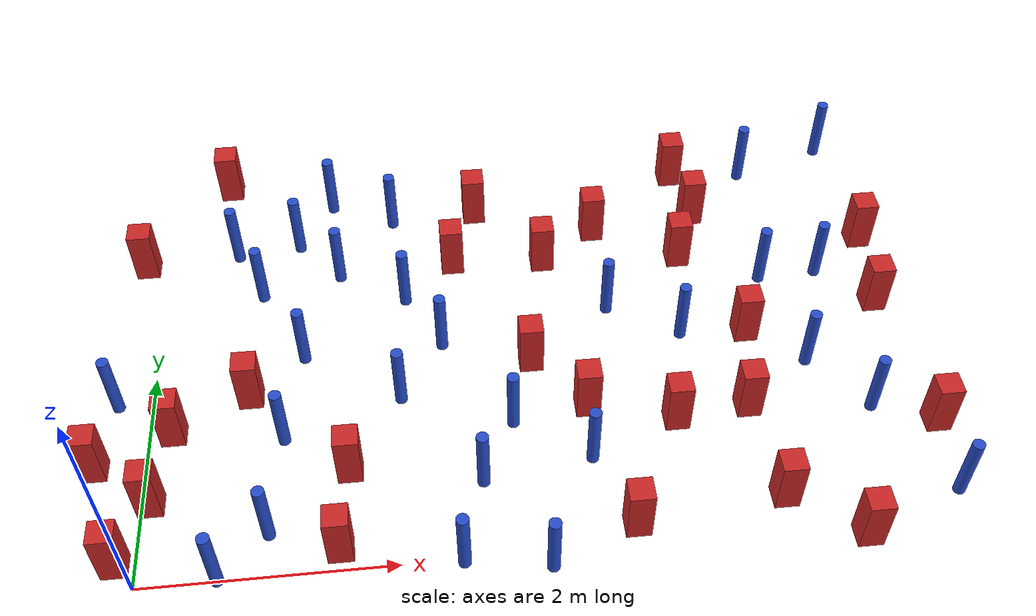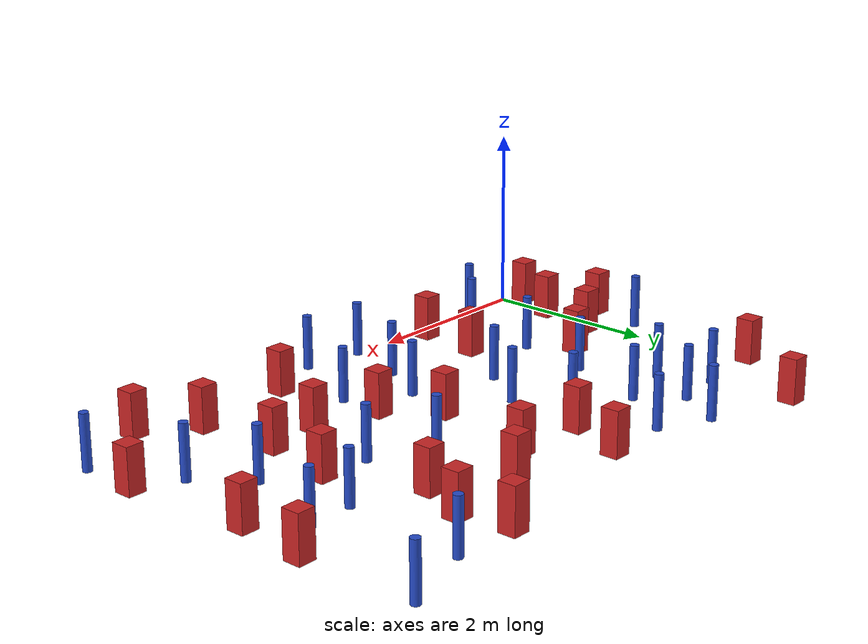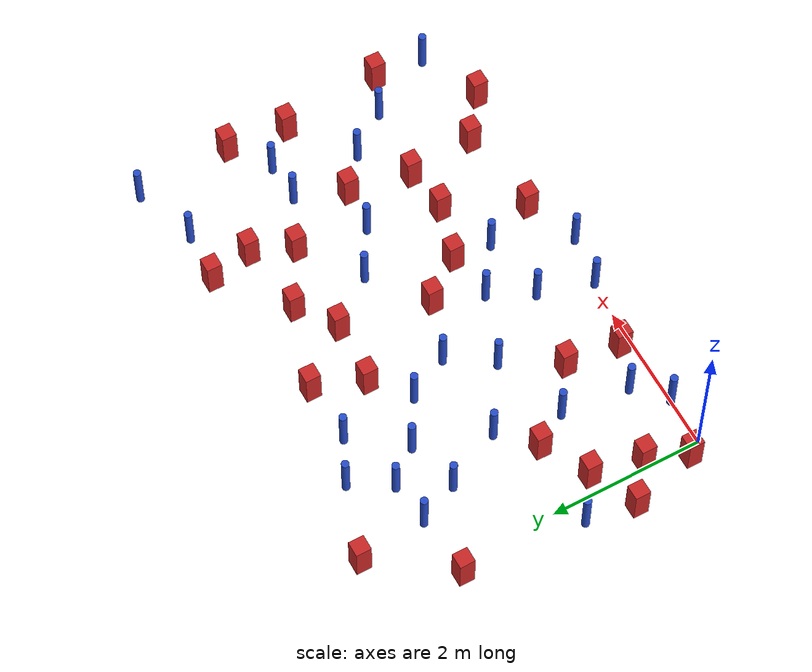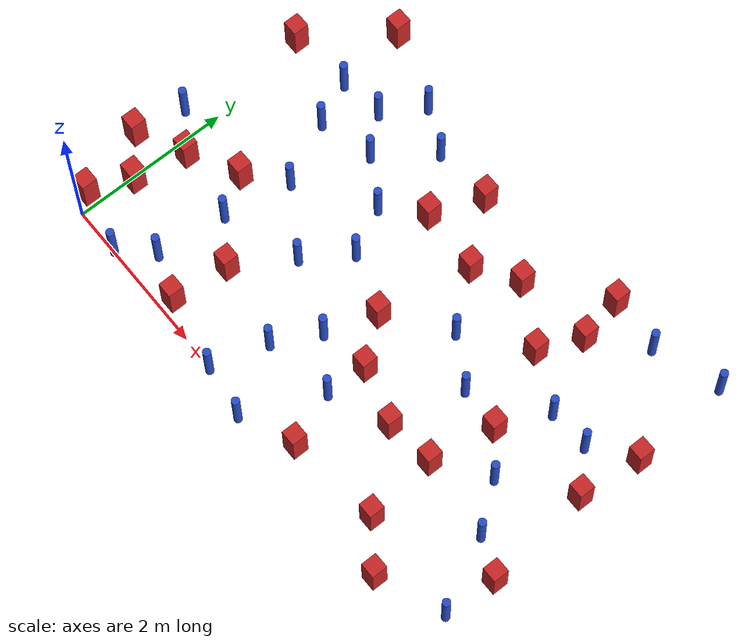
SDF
<sdf version="1.6">
 <model name="dense_0">
  <model name="pole_obstacle0">
   <static>true</static>
   <pose>2.05534213847 1.58425877043 7.38925637345e-09 -8.471706928e-08 1.24976765152e-08 -1.74513093012e-07</pose>
   <link name="link">
    <pose>0 0 0.3 0 -0 0</pose>
    <inertial>
     <mass>1</mass>
     <inertia><ixx>0.145833</ixx><ixy>0</ixy><ixz>0</ixz><iyy>0.145833</iyy><iyz>0</iyz><izz>0.125</izz></inertia>
    </inertial>
    <collision name="collision">
     <geometry><cylinder><radius>0.05</radius><length>.6</length></cylinder></geometry>
    </collision>
    <visual name="visual">
     <geometry><cylinder><radius>0.05</radius><length>.6</length></cylinder></geometry>
     <material>
      <script><name>Gazebo/Blue</name><uri>file://media/materials/scripts/gazebo.material</uri></script>
     </material>
    </visual>
   </link>
  </model>
  <model name="pole_obstacle3">
   <static>true</static>
   <pose>1.2492648832 2.10685251621 7.38925637345e-09 -8.47170692799e-08 1.24976765053e-08 -1.74513093017e-07</pose>
   <link name="link">
    <pose>0 0 0.3 0 -0 0</pose>
    <inertial>
     <mass>1</mass>
     <inertia><ixx>0.145833</ixx><ixy>0</ixy><ixz>0</ixz><iyy>0.145833</iyy><iyz>0</iyz><izz>0.125</izz></inertia>
    </inertial>
    <collision name="collision">
     <geometry><cylinder><radius>0.05</radius><length>.6</length></cylinder></geometry>
    </collision>
    <visual name="visual">
     <geometry><cylinder><radius>0.05</radius><length>.6</length></cylinder></geometry>
     <material>
      <script><name>Gazebo/Blue</name><uri>file://media/materials/scripts/gazebo.material</uri></script>
     </material>
    </visual>
   </link>
  </model>
  <model name="square_post_obstacle10">
   <static>true</static>
   <pose>6.42466675228 0.901377303321 1.91545236811e-07 -7.35059704564e-06 1.12565212e-07 2.39332434364e-05</pose>
   <link name="link">
    <pose>0 0 0.25 0 -0 0</pose>
    <inertial>
     <mass>100</mass>
     <inertia>
      <ixx>0.166667</ixx>
      <ixy>0</ixy>
      <ixz>0</ixz>
      <iyy>0.166667</iyy>
      <iyz>0</iyz>
      <izz>0.166667</izz>
     </inertia>
    </inertial>
    <collision name="collision"><geometry><box><size>.2 .2 .5</size></box></geometry></collision>
    <visual name="visual">
     <geometry><box><size>.2 .2 .5</size></box></geometry>
     <material>
      <script><name>Gazebo/Red</name><uri>file://media/materials/scripts/gazebo.material</uri></script>
     </material>
    </visual>
   </link>
  </model>
  <model name="square_post_obstacle14">
   <static>true</static>
   <pose>4.64269038231 2.97652837888 1.91545236811e-07 -7.35059704564e-06 1.12565212e-07 2.39332434364e-05</pose>
   <link name="link">
    <pose>0 0 0.25 0 -0 0</pose>
    <inertial>
     <mass>100</mass>
     <inertia>
      <ixx>0.166667</ixx>
      <ixy>0</ixy>
      <ixz>0</ixz>
      <iyy>0.166667</iyy>
      <iyz>0</iyz>
      <izz>0.166667</izz>
     </inertia>
    </inertial>
    <collision name="collision"><geometry><box><size>.2 .2 .5</size></box></geometry></collision>
    <visual name="visual">
     <geometry><box><size>.2 .2 .5</size></box></geometry>
     <material>
      <script><name>Gazebo/Red</name><uri>file://media/materials/scripts/gazebo.material</uri></script>
     </material>
    </visual>
   </link>
  </model>
  <model name="pole_obstacle9">
   <static>true</static>
   <pose>1.56069903557 3.04466221461 7.38925637345e-09 -8.47170692799e-08 1.24976765053e-08 -1.74513093017e-07</pose>
   <link name="link">
    <pose>0 0 0.3 0 -0 0</pose>
    <inertial>
     <mass>1</mass>
     <inertia><ixx>0.145833</ixx><ixy>0</ixy><ixz>0</ixz><iyy>0.145833</iyy><iyz>0</iyz><izz>0.125</izz></inertia>
    </inertial>
    <collision name="collision">
     <geometry><cylinder><radius>0.05</radius><length>.6</length></cylinder></geometry>
    </collision>
    <visual name="visual">
     <geometry><cylinder><radius>0.05</radius><length>.6</length></cylinder></geometry>
     <material>
      <script><name>Gazebo/Blue</name><uri>file://media/materials/scripts/gazebo.material</uri></script>
     </material>
    </visual>
   </link>
  </model>
  <model name="square_post_obstacle21">
   <static>true</static>
   <pose>5.06499825312 2.02042992541 1.91545236811e-07 -7.35059704564e-06 1.12565212e-07 2.39332434364e-05</pose>
   <link name="link">
    <pose>0 0 0.25 0 -0 0</pose>
    <inertial>
     <mass>100</mass>
     <inertia>
      <ixx>0.166667</ixx>
      <ixy>0</ixy>
      <ixz>0</ixz>
      <iyy>0.166667</iyy>
      <iyz>0</iyz>
      <izz>0.166667</izz>
     </inertia>
    </inertial>
    <collision name="collision"><geometry><box><size>.2 .2 .5</size></box></geometry></collision>
    <visual name="visual">
     <geometry><box><size>.2 .2 .5</size></box></geometry>
     <material>
      <script><name>Gazebo/Red</name><uri>file://media/materials/scripts/gazebo.material</uri></script>
     </material>
    </visual>
   </link>
  </model>
  <model name="square_post_obstacle29">
   <static>true</static>
   <pose>3.81314201577 0.163402459271 1.91545236811e-07 -7.35059704564e-06 1.12565212e-07 2.39332434364e-05</pose>
   <link name="link">
    <pose>0 0 0.25 0 -0 0</pose>
    <inertial>
     <mass>100</mass>
     <inertia>
      <ixx>0.166667</ixx>
      <ixy>0</ixy>
      <ixz>0</ixz>
      <iyy>0.166667</iyy>
      <iyz>0</iyz>
      <izz>0.166667</izz>
     </inertia>
    </inertial>
    <collision name="collision"><geometry><box><size>.2 .2 .5</size></box></geometry></collision>
    <visual name="visual">
     <geometry><box><size>.2 .2 .5</size></box></geometry>
     <material>
      <script><name>Gazebo/Red</name><uri>file://media/materials/scripts/gazebo.material</uri></script>
     </material>
    </visual>
   </link>
  </model>
  <model name="pole_obstacle22">
   <static>true</static>
   <pose>0.873941786842 2.86582440378 7.38925637345e-09 -8.47170692799e-08 1.2497676509e-08 -1.74513093016e-07</pose>
   <link name="link">
    <pose>0 0 0.3 0 -0 0</pose>
    <inertial>
     <mass>1</mass>
     <inertia><ixx>0.145833</ixx><ixy>0</ixy><ixz>0</ixz><iyy>0.145833</iyy><iyz>0</iyz><izz>0.125</izz></inertia>
    </inertial>
    <collision name="collision">
     <geometry><cylinder><radius>0.05</radius><length>.6</length></cylinder></geometry>
    </collision>
    <visual name="visual">
     <geometry><cylinder><radius>0.05</radius><length>.6</length></cylinder></geometry>
     <material>
      <script><name>Gazebo/Blue</name><uri>file://media/materials/scripts/gazebo.material</uri></script>
     </material>
    </visual>
   </link>
  </model>
  <model name="pole_obstacle31">
   <static>true</static>
   <pose>0.634519631613 3.39178512038 7.38925637345e-09 -8.47170692799e-08 1.2497676509e-08 -1.74513093016e-07</pose>
   <link name="link">
    <pose>0 0 0.3 0 -0 0</pose>
    <inertial>
     <mass>1</mass>
     <inertia><ixx>0.145833</ixx><ixy>0</ixy><ixz>0</ixz><iyy>0.145833</iyy><iyz>0</iyz><izz>0.125</izz></inertia>
    </inertial>
    <collision name="collision">
     <geometry><cylinder><radius>0.05</radius><length>.6</length></cylinder></geometry>
    </collision>
    <visual name="visual">
     <geometry><cylinder><radius>0.05</radius><length>.6</length></cylinder></geometry>
     <material>
      <script><name>Gazebo/Blue</name><uri>file://media/materials/scripts/gazebo.material</uri></script>
     </material>
    </visual>
   </link>
  </model>
  <model name="pole_obstacle37">
   <static>true</static>
   <pose>5.93893864169 1.10875900663 7.38925637345e-09 -8.471706928e-08 1.24976765134e-08 -1.74513093015e-07</pose>
   <link name="link">
    <pose>0 0 0.3 0 -0 0</pose>
    <inertial>
     <mass>1</mass>
     <inertia><ixx>0.145833</ixx><ixy>0</ixy><ixz>0</ixz><iyy>0.145833</iyy><iyz>0</iyz><izz>0.125</izz></inertia>
    </inertial>
    <collision name="collision">
     <geometry><cylinder><radius>0.05</radius><length>.6</length></cylinder></geometry>
    </collision>
    <visual name="visual">
     <geometry><cylinder><radius>0.05</radius><length>.6</length></cylinder></geometry>
     <material>
      <script><name>Gazebo/Blue</name><uri>file://media/materials/scripts/gazebo.material</uri></script>
     </material>
    </visual>
   </link>
  </model>
  <model name="pole_obstacle38">
   <static>true</static>
   <pose>5.45187543839 4.03479541859 7.38925637345e-09 -8.47170692797e-08 1.24976764805e-08 -1.74513093031e-07</pose>
   <link name="link">
    <pose>0 0 0.3 0 -0 0</pose>
    <inertial>
     <mass>1</mass>
     <inertia><ixx>0.145833</ixx><ixy>0</ixy><ixz>0</ixz><iyy>0.145833</iyy><iyz>0</iyz><izz>0.125</izz></inertia>
    </inertial>
    <collision name="collision">
     <geometry><cylinder><radius>0.05</radius><length>.6</length></cylinder></geometry>
    </collision>
    <visual name="visual">
     <geometry><cylinder><radius>0.05</radius><length>.6</length></cylinder></geometry>
     <material>
      <script><name>Gazebo/Blue</name><uri>file://media/materials/scripts/gazebo.material</uri></script>
     </material>
    </visual>
   </link>
  </model>
  <model name="square_post_obstacle38">
   <static>true</static>
   <pose>0.0765359612775 0.720646878985 1.91545236811e-07 -7.35059704564e-06 1.12565212e-07 2.39332434364e-05</pose>
   <link name="link">
    <pose>0 0 0.25 0 -0 0</pose>
    <inertial>
     <mass>100</mass>
     <inertia>
      <ixx>0.166667</ixx>
      <ixy>0</ixy>
      <ixz>0</ixz>
      <iyy>0.166667</iyy>
      <iyz>0</iyz>
      <izz>0.166667</izz>
     </inertia>
    </inertial>
    <collision name="collision"><geometry><box><size>.2 .2 .5</size></box></geometry></collision>
    <visual name="visual">
     <geometry><box><size>.2 .2 .5</size></box></geometry>
     <material>
      <script><name>Gazebo/Red</name><uri>file://media/materials/scripts/gazebo.material</uri></script>
     </material>
    </visual>
   </link>
  </model>
  <model name="pole_obstacle50">
   <static>true</static>
   <pose>2.4703769479 -0.0257147337834 7.38925637345e-09 -8.471706928e-08 1.24976765123e-08 -1.74513093015e-07</pose>
   <link name="link">
    <pose>0 0 0.3 0 -0 0</pose>
    <inertial>
     <mass>1</mass>
     <inertia><ixx>0.145833</ixx><ixy>0</ixy><ixz>0</ixz><iyy>0.145833</iyy><iyz>0</iyz><izz>0.125</izz></inertia>
    </inertial>
    <collision name="collision">
     <geometry><cylinder><radius>0.05</radius><length>.6</length></cylinder></geometry>
    </collision>
    <visual name="visual">
     <geometry><cylinder><radius>0.05</radius><length>.6</length></cylinder></geometry>
     <material>
      <script><name>Gazebo/Blue</name><uri>file://media/materials/scripts/gazebo.material</uri></script>
     </material>
    </visual>
   </link>
  </model>
  <model name="square_post_obstacle54">
   <static>true</static>
   <pose>3.90357703714 3.39285576708 1.91545236811e-07 -7.35059704564e-06 1.12565212e-07 2.39332434364e-05</pose>
   <link name="link">
    <pose>0 0 0.25 0 -0 0</pose>
    <inertial>
     <mass>100</mass>
     <inertia>
      <ixx>0.166667</ixx>
      <ixy>0</ixy>
      <ixz>0</ixz>
      <iyy>0.166667</iyy>
      <iyz>0</iyz>
      <izz>0.166667</izz>
     </inertia>
    </inertial>
    <collision name="collision"><geometry><box><size>.2 .2 .5</size></box></geometry></collision>
    <visual name="visual">
     <geometry><box><size>.2 .2 .5</size></box></geometry>
     <material>
      <script><name>Gazebo/Red</name><uri>file://media/materials/scripts/gazebo.material</uri></script>
     </material>
    </visual>
   </link>
  </model>
  <model name="square_post_obstacle55">
   <static>true</static>
   <pose>3.17290974705 1.87367099776 1.91545236811e-07 -7.35059704564e-06 1.12565212e-07 2.39332434364e-05</pose>
   <link name="link">
    <pose>0 0 0.25 0 -0 0</pose>
    <inertial>
     <mass>100</mass>
     <inertia>
      <ixx>0.166667</ixx>
      <ixy>0</ixy>
      <ixz>0</ixz>
      <iyy>0.166667</iyy>
      <iyz>0</iyz>
      <izz>0.166667</izz>
     </inertia>
    </inertial>
    <collision name="collision"><geometry><box><size>.2 .2 .5</size></box></geometry></collision>
    <visual name="visual">
     <geometry><box><size>.2 .2 .5</size></box></geometry>
     <material>
      <script><name>Gazebo/Red</name><uri>file://media/materials/scripts/gazebo.material</uri></script>
     </material>
    </visual>
   </link>
  </model>
  <model name="pole_obstacle62">
   <static>true</static>
   <pose>1.09343472295 1.25424653149 7.38925637345e-09 -8.471706928e-08 1.24976765079e-08 -1.74513093017e-07</pose>
   <link name="link">
    <pose>0 0 0.3 0 -0 0</pose>
    <inertial>
     <mass>1</mass>
     <inertia><ixx>0.145833</ixx><ixy>0</ixy><ixz>0</ixz><iyy>0.145833</iyy><iyz>0</iyz><izz>0.125</izz></inertia>
    </inertial>
    <collision name="collision">
     <geometry><cylinder><radius>0.05</radius><length>.6</length></cylinder></geometry>
    </collision>
    <visual name="visual">
     <geometry><cylinder><radius>0.05</radius><length>.6</length></cylinder></geometry>
     <material>
      <script><name>Gazebo/Blue</name><uri>file://media/materials/scripts/gazebo.material</uri></script>
     </material>
    </visual>
   </link>
  </model>
  <model name="square_post_obstacle74">
   <static>true</static>
   <pose>6.28084248907 2.25597483053 1.91545236811e-07 -7.35059704564e-06 1.12565212e-07 2.39332434364e-05</pose>
   <link name="link">
    <pose>0 0 0.25 0 -0 0</pose>
    <inertial>
     <mass>100</mass>
     <inertia>
      <ixx>0.166667</ixx>
      <ixy>0</ixy>
      <ixz>0</ixz>
      <iyy>0.166667</iyy>
      <iyz>0</iyz>
      <izz>0.166667</izz>
     </inertia>
    </inertial>
    <collision name="collision"><geometry><box><size>.2 .2 .5</size></box></geometry></collision>
    <visual name="visual">
     <geometry><box><size>.2 .2 .5</size></box></geometry>
     <material>
      <script><name>Gazebo/Red</name><uri>file://media/materials/scripts/gazebo.material</uri></script>
     </material>
    </visual>
   </link>
  </model>
  <model name="pole_obstacle77">
   <static>true</static>
   <pose>3.90565426814 2.41565411377 7.38925637345e-09 -8.47170692798e-08 1.24976764939e-08 -1.74513093025e-07</pose>
   <link name="link">
    <pose>0 0 0.3 0 -0 0</pose>
    <inertial>
     <mass>1</mass>
     <inertia><ixx>0.145833</ixx><ixy>0</ixy><ixz>0</ixz><iyy>0.145833</iyy><iyz>0</iyz><izz>0.125</izz></inertia>
    </inertial>
    <collision name="collision">
     <geometry><cylinder><radius>0.05</radius><length>.6</length></cylinder></geometry>
    </collision>
    <visual name="visual">
     <geometry><cylinder><radius>0.05</radius><length>.6</length></cylinder></geometry>
     <material>
      <script><name>Gazebo/Blue</name><uri>file://media/materials/scripts/gazebo.material</uri></script>
     </material>
    </visual>
   </link>
  </model>
  <model name="pole_obstacle79">
   <static>true</static>
   <pose>2.05758972148 3.69921704619 7.38925637345e-09 -8.47170692798e-08 1.24976764939e-08 -1.74513093025e-07</pose>
   <link name="link">
    <pose>0 0 0.3 0 -0 0</pose>
    <inertial>
     <mass>1</mass>
     <inertia><ixx>0.145833</ixx><ixy>0</ixy><ixz>0</ixz><iyy>0.145833</iyy><iyz>0</iyz><izz>0.125</izz></inertia>
    </inertial>
    <collision name="collision">
     <geometry><cylinder><radius>0.05</radius><length>.6</length></cylinder></geometry>
    </collision>
    <visual name="visual">
     <geometry><cylinder><radius>0.05</radius><length>.6</length></cylinder></geometry>
     <material>
      <script><name>Gazebo/Blue</name><uri>file://media/materials/scripts/gazebo.material</uri></script>
     </material>
    </visual>
   </link>
  </model>
  <model name="pole_obstacle80">
   <static>true</static>
   <pose>6.29403033736 4.31489915328 7.38925637345e-09 -8.47170692796e-08 1.24976764786e-08 -1.74513093032e-07</pose>
   <link name="link">
    <pose>0 0 0.3 0 -0 0</pose>
    <inertial>
     <mass>1</mass>
     <inertia><ixx>0.145833</ixx><ixy>0</ixy><ixz>0</ixz><iyy>0.145833</iyy><iyz>0</iyz><izz>0.125</izz></inertia>
    </inertial>
    <collision name="collision">
     <geometry><cylinder><radius>0.05</radius><length>.6</length></cylinder></geometry>
    </collision>
    <visual name="visual">
     <geometry><cylinder><radius>0.05</radius><length>.6</length></cylinder></geometry>
     <material>
      <script><name>Gazebo/Blue</name><uri>file://media/materials/scripts/gazebo.material</uri></script>
     </material>
    </visual>
   </link>
  </model>
  <model name="pole_obstacle82">
   <static>true</static>
   <pose>1.49854601932 3.96772741222 7.38925637345e-09 -8.47170692799e-08 1.24976765077e-08 -1.74513093019e-07</pose>
   <link name="link">
    <pose>0 0 0.3 0 -0 0</pose>
    <inertial>
     <mass>1</mass>
     <inertia><ixx>0.145833</ixx><ixy>0</ixy><ixz>0</ixz><iyy>0.145833</iyy><iyz>0</iyz><izz>0.125</izz></inertia>
    </inertial>
    <collision name="collision">
     <geometry><cylinder><radius>0.05</radius><length>.6</length></cylinder></geometry>
    </collision>
    <visual name="visual">
     <geometry><cylinder><radius>0.05</radius><length>.6</length></cylinder></geometry>
     <material>
      <script><name>Gazebo/Blue</name><uri>file://media/materials/scripts/gazebo.material</uri></script>
     </material>
    </visual>
   </link>
  </model>
  <model name="pole_obstacle86">
   <static>true</static>
   <pose>6.39355051363 0.230254382399 7.38925637345e-09 -8.471706928e-08 1.24976765136e-08 -1.74513093014e-07</pose>
   <link name="link">
    <pose>0 0 0.3 0 -0 0</pose>
    <inertial>
     <mass>1</mass>
     <inertia><ixx>0.145833</ixx><ixy>0</ixy><ixz>0</ixz><iyy>0.145833</iyy><iyz>0</iyz><izz>0.125</izz></inertia>
    </inertial>
    <collision name="collision">
     <geometry><cylinder><radius>0.05</radius><length>.6</length></cylinder></geometry>
    </collision>
    <visual name="visual">
     <geometry><cylinder><radius>0.05</radius><length>.6</length></cylinder></geometry>
     <material>
      <script><name>Gazebo/Blue</name><uri>file://media/materials/scripts/gazebo.material</uri></script>
     </material>
    </visual>
   </link>
  </model>
  <model name="square_post_obstacle81">
   <static>true</static>
   <pose>5.00570916769 0.306361653262 1.91545236811e-07 -7.35059704564e-06 1.12565212e-07 2.39332434364e-05</pose>
   <link name="link">
    <pose>0 0 0.25 0 -0 0</pose>
    <inertial>
     <mass>100</mass>
     <inertia>
      <ixx>0.166667</ixx>
      <ixy>0</ixy>
      <ixz>0</ixz>
      <iyy>0.166667</iyy>
      <iyz>0</iyz>
      <izz>0.166667</izz>
     </inertia>
    </inertial>
    <collision name="collision"><geometry><box><size>.2 .2 .5</size></box></geometry></collision>
    <visual name="visual">
     <geometry><box><size>.2 .2 .5</size></box></geometry>
     <material>
      <script><name>Gazebo/Red</name><uri>file://media/materials/scripts/gazebo.material</uri></script>
     </material>
    </visual>
   </link>
  </model>
  <model name="square_post_obstacle89">
   <static>true</static>
   <pose>-0.180811467485 3.32275997113 1.91545236811e-07 -7.35059704564e-06 1.12565212e-07 2.39332434364e-05</pose>
   <link name="link">
    <pose>0 0 0.25 0 -0 0</pose>
    <inertial>
     <mass>100</mass>
     <inertia>
      <ixx>0.166667</ixx>
      <ixy>0</ixy>
      <ixz>0</ixz>
      <iyy>0.166667</iyy>
      <iyz>0</iyz>
      <izz>0.166667</izz>
     </inertia>
    </inertial>
    <collision name="collision"><geometry><box><size>.2 .2 .5</size></box></geometry></collision>
    <visual name="visual">
     <geometry><box><size>.2 .2 .5</size></box></geometry>
     <material>
      <script><name>Gazebo/Red</name><uri>file://media/materials/scripts/gazebo.material</uri></script>
     </material>
    </visual>
   </link>
  </model>
  <model name="square_post_obstacle90">
   <static>true</static>
   <pose>6.36619432019 3.05156068326 1.91545236811e-07 -7.35059704564e-06 1.12565212e-07 2.39332434364e-05</pose>
   <link name="link">
    <pose>0 0 0.25 0 -0 0</pose>
    <inertial>
     <mass>100</mass>
     <inertia>
      <ixx>0.166667</ixx>
      <ixy>0</ixy>
      <ixz>0</ixz>
      <iyy>0.166667</iyy>
      <iyz>0</iyz>
      <izz>0.166667</izz>
     </inertia>
    </inertial>
    <collision name="collision"><geometry><box><size>.2 .2 .5</size></box></geometry></collision>
    <visual name="visual">
     <geometry><box><size>.2 .2 .5</size></box></geometry>
     <material>
      <script><name>Gazebo/Red</name><uri>file://media/materials/scripts/gazebo.material</uri></script>
     </material>
    </visual>
   </link>
  </model>
  <model name="pole_obstacle106">
   <static>true</static>
   <pose>-0.284214341293 1.72953298172 7.38925637345e-09 -8.471706928e-08 1.24976765077e-08 -1.74513093016e-07</pose>
   <link name="link">
    <pose>0 0 0.3 0 -0 0</pose>
    <inertial>
     <mass>1</mass>
     <inertia><ixx>0.145833</ixx><ixy>0</ixy><ixz>0</ixz><iyy>0.145833</iyy><iyz>0</iyz><izz>0.125</izz></inertia>
    </inertial>
    <collision name="collision">
     <geometry><cylinder><radius>0.05</radius><length>.6</length></cylinder></geometry>
    </collision>
    <visual name="visual">
     <geometry><cylinder><radius>0.05</radius><length>.6</length></cylinder></geometry>
     <material>
      <script><name>Gazebo/Blue</name><uri>file://media/materials/scripts/gazebo.material</uri></script>
     </material>
    </visual>
   </link>
  </model>
  <model name="square_post_obstacle95">
   <static>true</static>
   <pose>5.55613628014 -0.100720146479 1.91545236811e-07 -7.35059704564e-06 1.12565212e-07 2.39332434364e-05</pose>
   <link name="link">
    <pose>0 0 0.25 0 -0 0</pose>
    <inertial>
     <mass>100</mass>
     <inertia>
      <ixx>0.166667</ixx>
      <ixy>0</ixy>
      <ixz>0</ixz>
      <iyy>0.166667</iyy>
      <iyz>0</iyz>
      <izz>0.166667</izz>
     </inertia>
    </inertial>
    <collision name="collision"><geometry><box><size>.2 .2 .5</size></box></geometry></collision>
    <visual name="visual">
     <geometry><box><size>.2 .2 .5</size></box></geometry>
     <material>
      <script><name>Gazebo/Red</name><uri>file://media/materials/scripts/gazebo.material</uri></script>
     </material>
    </visual>
   </link>
  </model>
  <model name="square_post_obstacle110">
   <static>true</static>
   <pose>1.54342732346 0.169081459973 1.91545236811e-07 -7.35059704564e-06 1.12565212e-07 2.39332434364e-05</pose>
   <link name="link">
    <pose>0 0 0.25 0 -0 0</pose>
    <inertial>
     <mass>100</mass>
     <inertia>
      <ixx>0.166667</ixx>
      <ixy>0</ixy>
      <ixz>0</ixz>
      <iyy>0.166667</iyy>
      <iyz>0</iyz>
      <izz>0.166667</izz>
     </inertia>
    </inertial>
    <collision name="collision"><geometry><box><size>.2 .2 .5</size></box></geometry></collision>
    <visual name="visual">
     <geometry><box><size>.2 .2 .5</size></box></geometry>
     <material>
      <script><name>Gazebo/Red</name><uri>file://media/materials/scripts/gazebo.material</uri></script>
     </material>
    </visual>
   </link>
  </model>
  <model name="pole_obstacle127">
   <static>true</static>
   <pose>2.13696443801 2.69597433059 7.38925637345e-09 -8.47170692798e-08 1.24976764939e-08 -1.74513093025e-07</pose>
   <link name="link">
    <pose>0 0 0.3 0 -0 0</pose>
    <inertial>
     <mass>1</mass>
     <inertia><ixx>0.145833</ixx><ixy>0</ixy><ixz>0</ixz><iyy>0.145833</iyy><iyz>0</iyz><izz>0.125</izz></inertia>
    </inertial>
    <collision name="collision">
     <geometry><cylinder><radius>0.05</radius><length>.6</length></cylinder></geometry>
    </collision>
    <visual name="visual">
     <geometry><cylinder><radius>0.05</radius><length>.6</length></cylinder></geometry>
     <material>
      <script><name>Gazebo/Blue</name><uri>file://media/materials/scripts/gazebo.material</uri></script>
     </material>
    </visual>
   </link>
  </model>
  <model name="pole_obstacle133">
   <static>true</static>
   <pose>3.56248180845 0.825413103068 7.38925637345e-09 -8.471706928e-08 1.24976765177e-08 -1.74513093012e-07</pose>
   <link name="link">
    <pose>0 0 0.3 0 -0 0</pose>
    <inertial>
     <mass>1</mass>
     <inertia><ixx>0.145833</ixx><ixy>0</ixy><ixz>0</ixz><iyy>0.145833</iyy><iyz>0</iyz><izz>0.125</izz></inertia>
    </inertial>
    <collision name="collision">
     <geometry><cylinder><radius>0.05</radius><length>.6</length></cylinder></geometry>
    </collision>
    <visual name="visual">
     <geometry><cylinder><radius>0.05</radius><length>.6</length></cylinder></geometry>
     <material>
      <script><name>Gazebo/Blue</name><uri>file://media/materials/scripts/gazebo.material</uri></script>
     </material>
    </visual>
   </link>
  </model>
  <model name="square_post_obstacle125">
   <static>true</static>
   <pose>0.810827086101 1.7138924066 1.91545236811e-07 -7.35059704564e-06 1.12565212e-07 2.39332434364e-05</pose>
   <link name="link">
    <pose>0 0 0.25 0 -0 0</pose>
    <inertial>
     <mass>100</mass>
     <inertia>
      <ixx>0.166667</ixx>
      <ixy>0</ixy>
      <ixz>0</ixz>
      <iyy>0.166667</iyy>
      <iyz>0</iyz>
      <izz>0.166667</izz>
     </inertia>
    </inertial>
    <collision name="collision"><geometry><box><size>.2 .2 .5</size></box></geometry></collision>
    <visual name="visual">
     <geometry><box><size>.2 .2 .5</size></box></geometry>
     <material>
      <script><name>Gazebo/Red</name><uri>file://media/materials/scripts/gazebo.material</uri></script>
     </material>
    </visual>
   </link>
  </model>
  <model name="pole_obstacle141">
   <static>true</static>
   <pose>1.19305378905 3.46222843669 7.38925637345e-09 -8.47170692799e-08 1.24976765053e-08 -1.74513093017e-07</pose>
   <link name="link">
    <pose>0 0 0.3 0 -0 0</pose>
    <inertial>
     <mass>1</mass>
     <inertia><ixx>0.145833</ixx><ixy>0</ixy><ixz>0</ixz><iyy>0.145833</iyy><iyz>0</iyz><izz>0.125</izz></inertia>
    </inertial>
    <collision name="collision">
     <geometry><cylinder><radius>0.05</radius><length>.6</length></cylinder></geometry>
    </collision>
    <visual name="visual">
     <geometry><cylinder><radius>0.05</radius><length>.6</length></cylinder></geometry>
     <material>
      <script><name>Gazebo/Blue</name><uri>file://media/materials/scripts/gazebo.material</uri></script>
     </material>
    </visual>
   </link>
  </model>
  <model name="square_post_obstacle130">
   <static>true</static>
   <pose>2.82527806838 3.74008543943 1.91545236811e-07 -7.35059704564e-06 1.12565212e-07 2.39332434364e-05</pose>
   <link name="link">
    <pose>0 0 0.25 0 -0 0</pose>
    <inertial>
     <mass>100</mass>
     <inertia>
      <ixx>0.166667</ixx>
      <ixy>0</ixy>
      <ixz>0</ixz>
      <iyy>0.166667</iyy>
      <iyz>0</iyz>
      <izz>0.166667</izz>
     </inertia>
    </inertial>
    <collision name="collision"><geometry><box><size>.2 .2 .5</size></box></geometry></collision>
    <visual name="visual">
     <geometry><box><size>.2 .2 .5</size></box></geometry>
     <material>
      <script><name>Gazebo/Red</name><uri>file://media/materials/scripts/gazebo.material</uri></script>
     </material>
    </visual>
   </link>
  </model>
  <model name="pole_obstacle148">
   <static>true</static>
   <pose>0.622660413617 0.00480755637286 7.38925637345e-09 -8.471706928e-08 1.2497676508e-08 -1.74513093017e-07</pose>
   <link name="link">
    <pose>0 0 0.3 0 -0 0</pose>
    <inertial>
     <mass>1</mass>
     <inertia><ixx>0.145833</ixx><ixy>0</ixy><ixz>0</ixz><iyy>0.145833</iyy><iyz>0</iyz><izz>0.125</izz></inertia>
    </inertial>
    <collision name="collision">
     <geometry><cylinder><radius>0.05</radius><length>.6</length></cylinder></geometry>
    </collision>
    <visual name="visual">
     <geometry><cylinder><radius>0.05</radius><length>.6</length></cylinder></geometry>
     <material>
      <script><name>Gazebo/Blue</name><uri>file://media/materials/scripts/gazebo.material</uri></script>
     </material>
    </visual>
   </link>
  </model>
  <model name="pole_obstacle150">
   <static>true</static>
   <pose>5.8664025136 2.67419437574 7.38925637345e-09 -8.47170692798e-08 1.24976764937e-08 -1.74513093023e-07</pose>
   <link name="link">
    <pose>0 0 0.3 0 -0 0</pose>
    <inertial>
     <mass>1</mass>
     <inertia><ixx>0.145833</ixx><ixy>0</ixy><ixz>0</ixz><iyy>0.145833</iyy><iyz>0</iyz><izz>0.125</izz></inertia>
    </inertial>
    <collision name="collision">
     <geometry><cylinder><radius>0.05</radius><length>.6</length></cylinder></geometry>
    </collision>
    <visual name="visual">
     <geometry><cylinder><radius>0.05</radius><length>.6</length></cylinder></geometry>
     <material>
      <script><name>Gazebo/Blue</name><uri>file://media/materials/scripts/gazebo.material</uri></script>
     </material>
    </visual>
   </link>
  </model>
  <model name="square_post_obstacle141">
   <static>true</static>
   <pose>0.199270413897 1.3903412293 1.91545236811e-07 -7.35059704564e-06 1.12565212e-07 2.39332434364e-05</pose>
   <link name="link">
    <pose>0 0 0.25 0 -0 0</pose>
    <inertial>
     <mass>100</mass>
     <inertia>
      <ixx>0.166667</ixx>
      <ixy>0</ixy>
      <ixz>0</ixz>
      <iyy>0.166667</iyy>
      <iyz>0</iyz>
      <izz>0.166667</izz>
     </inertia>
    </inertial>
    <collision name="collision"><geometry><box><size>.2 .2 .5</size></box></geometry></collision>
    <visual name="visual">
     <geometry><box><size>.2 .2 .5</size></box></geometry>
     <material>
      <script><name>Gazebo/Red</name><uri>file://media/materials/scripts/gazebo.material</uri></script>
     </material>
    </visual>
   </link>
  </model>
  <model name="square_post_obstacle151">
   <static>true</static>
   <pose>4.91196361464 1.2076903404 1.91545236811e-07 -7.35059704564e-06 1.12565212e-07 2.39332434364e-05</pose>
   <link name="link">
    <pose>0 0 0.25 0 -0 0</pose>
    <inertial>
     <mass>100</mass>
     <inertia>
      <ixx>0.166667</ixx>
      <ixy>0</ixy>
      <ixz>0</ixz>
      <iyy>0.166667</iyy>
      <iyz>0</iyz>
      <izz>0.166667</izz>
     </inertia>
    </inertial>
    <collision name="collision"><geometry><box><size>.2 .2 .5</size></box></geometry></collision>
    <visual name="visual">
     <geometry><box><size>.2 .2 .5</size></box></geometry>
     <material>
      <script><name>Gazebo/Red</name><uri>file://media/materials/scripts/gazebo.material</uri></script>
     </material>
    </visual>
   </link>
  </model>
  <model name="square_post_obstacle152">
   <static>true</static>
   <pose>-0.400904915365 1.09799885221 1.91545236811e-07 -7.35059704564e-06 1.12565212e-07 2.39332434364e-05</pose>
   <link name="link">
    <pose>0 0 0.25 0 -0 0</pose>
    <inertial>
     <mass>100</mass>
     <inertia>
      <ixx>0.166667</ixx>
      <ixy>0</ixy>
      <ixz>0</ixz>
      <iyy>0.166667</iyy>
      <iyz>0</iyz>
      <izz>0.166667</izz>
     </inertia>
    </inertial>
    <collision name="collision"><geometry><box><size>.2 .2 .5</size></box></geometry></collision>
    <visual name="visual">
     <geometry><box><size>.2 .2 .5</size></box></geometry>
     <material>
      <script><name>Gazebo/Red</name><uri>file://media/materials/scripts/gazebo.material</uri></script>
     </material>
    </visual>
   </link>
  </model>
  <model name="pole_obstacle165">
   <static>true</static>
   <pose>3.13114243956 -0.129535527923 7.38925637345e-09 -8.471706928e-08 1.24976765208e-08 -1.7451309301e-07</pose>
   <link name="link">
    <pose>0 0 0.3 0 -0 0</pose>
    <inertial>
     <mass>1</mass>
     <inertia><ixx>0.145833</ixx><ixy>0</ixy><ixz>0</ixz><iyy>0.145833</iyy><iyz>0</iyz><izz>0.125</izz></inertia>
    </inertial>
    <collision name="collision">
     <geometry><cylinder><radius>0.05</radius><length>.6</length></cylinder></geometry>
    </collision>
    <visual name="visual">
     <geometry><cylinder><radius>0.05</radius><length>.6</length></cylinder></geometry>
     <material>
      <script><name>Gazebo/Blue</name><uri>file://media/materials/scripts/gazebo.material</uri></script>
     </material>
    </visual>
   </link>
  </model>
  <model name="square_post_obstacle158">
   <static>true</static>
   <pose>0.529607617728 4.29771986497 1.91545236811e-07 -7.35059704564e-06 1.12565212e-07 2.39332434364e-05</pose>
   <link name="link">
    <pose>0 0 0.25 0 -0 0</pose>
    <inertial>
     <mass>100</mass>
     <inertia>
      <ixx>0.166667</ixx>
      <ixy>0</ixy>
      <ixz>0</ixz>
      <iyy>0.166667</iyy>
      <iyz>0</iyz>
      <izz>0.166667</izz>
     </inertia>
    </inertial>
    <collision name="collision"><geometry><box><size>.2 .2 .5</size></box></geometry></collision>
    <visual name="visual">
     <geometry><box><size>.2 .2 .5</size></box></geometry>
     <material>
      <script><name>Gazebo/Red</name><uri>file://media/materials/scripts/gazebo.material</uri></script>
     </material>
    </visual>
   </link>
  </model>
  <model name="square_post_obstacle162">
   <static>true</static>
   <pose>4.76338463924 4.07415068573 1.91545236811e-07 -7.35059704564e-06 1.12565212e-07 2.39332434364e-05</pose>
   <link name="link">
    <pose>0 0 0.25 0 -0 0</pose>
    <inertial>
     <mass>100</mass>
     <inertia>
      <ixx>0.166667</ixx>
      <ixy>0</ixy>
      <ixz>0</ixz>
      <iyy>0.166667</iyy>
      <iyz>0</iyz>
      <izz>0.166667</izz>
     </inertia>
    </inertial>
    <collision name="collision"><geometry><box><size>.2 .2 .5</size></box></geometry></collision>
    <visual name="visual">
     <geometry><box><size>.2 .2 .5</size></box></geometry>
     <material>
      <script><name>Gazebo/Red</name><uri>file://media/materials/scripts/gazebo.material</uri></script>
     </material>
    </visual>
   </link>
  </model>
  <model name="pole_obstacle172">
   <static>true</static>
   <pose>2.67249068591 0.684325978337 7.38925637345e-09 -8.471706928e-08 1.24976765177e-08 -1.74513093012e-07</pose>
   <link name="link">
    <pose>0 0 0.3 0 -0 0</pose>
    <inertial>
     <mass>1</mass>
     <inertia><ixx>0.145833</ixx><ixy>0</ixy><ixz>0</ixz><iyy>0.145833</iyy><iyz>0</iyz><izz>0.125</izz></inertia>
    </inertial>
    <collision name="collision">
     <geometry><cylinder><radius>0.05</radius><length>.6</length></cylinder></geometry>
    </collision>
    <visual name="visual">
     <geometry><cylinder><radius>0.05</radius><length>.6</length></cylinder></geometry>
     <material>
      <script><name>Gazebo/Blue</name><uri>file://media/materials/scripts/gazebo.material</uri></script>
     </material>
    </visual>
   </link>
  </model>
  <model name="pole_obstacle177">
   <static>true</static>
   <pose>2.9628270445 1.24052259729 7.38925637345e-09 -8.471706928e-08 1.24976765152e-08 -1.74513093012e-07</pose>
   <link name="link">
    <pose>0 0 0.3 0 -0 0</pose>
    <inertial>
     <mass>1</mass>
     <inertia><ixx>0.145833</ixx><ixy>0</ixy><ixz>0</ixz><iyy>0.145833</iyy><iyz>0</iyz><izz>0.125</izz></inertia>
    </inertial>
    <collision name="collision">
     <geometry><cylinder><radius>0.05</radius><length>.6</length></cylinder></geometry>
    </collision>
    <visual name="visual">
     <geometry><cylinder><radius>0.05</radius><length>.6</length></cylinder></geometry>
     <material>
      <script><name>Gazebo/Blue</name><uri>file://media/materials/scripts/gazebo.material</uri></script>
     </material>
    </visual>
   </link>
  </model>
  <model name="pole_obstacle186">
   <static>true</static>
   <pose>2.43050803487 2.13948728588 7.38925637345e-09 -8.47170692798e-08 1.24976764939e-08 -1.74513093025e-07</pose>
   <link name="link">
    <pose>0 0 0.3 0 -0 0</pose>
    <inertial>
     <mass>1</mass>
     <inertia><ixx>0.145833</ixx><ixy>0</ixy><ixz>0</ixz><iyy>0.145833</iyy><iyz>0</iyz><izz>0.125</izz></inertia>
    </inertial>
    <collision name="collision">
     <geometry><cylinder><radius>0.05</radius><length>.6</length></cylinder></geometry>
    </collision>
    <visual name="visual">
     <geometry><cylinder><radius>0.05</radius><length>.6</length></cylinder></geometry>
     <material>
      <script><name>Gazebo/Blue</name><uri>file://media/materials/scripts/gazebo.material</uri></script>
     </material>
    </visual>
   </link>
  </model>
  <model name="pole_obstacle189">
   <static>true</static>
   <pose>0.995790692208 0.366163136034 7.38925637345e-09 -8.47170692799e-08 1.24976765042e-08 -1.74513093018e-07</pose>
   <link name="link">
    <pose>0 0 0.3 0 -0 0</pose>
    <inertial>
     <mass>1</mass>
     <inertia><ixx>0.145833</ixx><ixy>0</ixy><ixz>0</ixz><iyy>0.145833</iyy><iyz>0</iyz><izz>0.125</izz></inertia>
    </inertial>
    <collision name="collision">
     <geometry><cylinder><radius>0.05</radius><length>.6</length></cylinder></geometry>
    </collision>
    <visual name="visual">
     <geometry><cylinder><radius>0.05</radius><length>.6</length></cylinder></geometry>
     <material>
      <script><name>Gazebo/Blue</name><uri>file://media/materials/scripts/gazebo.material</uri></script>
     </material>
    </visual>
   </link>
  </model>
  <model name="square_post_obstacle188">
   <static>true</static>
   <pose>4.29708052326 1.13520165758 1.91545236811e-07 -7.35059704564e-06 1.12565212e-07 2.39332434364e-05</pose>
   <link name="link">
    <pose>0 0 0.25 0 -0 0</pose>
    <inertial>
     <mass>100</mass>
     <inertia>
      <ixx>0.166667</ixx>
      <ixy>0</ixy>
      <ixz>0</ixz>
      <iyy>0.166667</iyy>
      <iyz>0</iyz>
      <izz>0.166667</izz>
     </inertia>
    </inertial>
    <collision name="collision"><geometry><box><size>.2 .2 .5</size></box></geometry></collision>
    <visual name="visual">
     <geometry><box><size>.2 .2 .5</size></box></geometry>
     <material>
      <script><name>Gazebo/Red</name><uri>file://media/materials/scripts/gazebo.material</uri></script>
     </material>
    </visual>
   </link>
  </model>
  <model name="square_post_obstacle193">
   <static>true</static>
   <pose>1.62375358429 0.88806792279 1.91545236811e-07 -7.35059704564e-06 1.12565212e-07 2.39332434364e-05</pose>
   <link name="link">
    <pose>0 0 0.25 0 -0 0</pose>
    <inertial>
     <mass>100</mass>
     <inertia>
      <ixx>0.166667</ixx>
      <ixy>0</ixy>
      <ixz>0</ixz>
      <iyy>0.166667</iyy>
      <iyz>0</iyz>
      <izz>0.166667</izz>
     </inertia>
    </inertial>
    <collision name="collision"><geometry><box><size>.2 .2 .5</size></box></geometry></collision>
    <visual name="visual">
     <geometry><box><size>.2 .2 .5</size></box></geometry>
     <material>
      <script><name>Gazebo/Red</name><uri>file://media/materials/scripts/gazebo.material</uri></script>
     </material>
    </visual>
   </link>
  </model>
  <model name="square_post_obstacle195">
   <static>true</static>
   <pose>-0.145368733993 0.203131187055 1.91545236811e-07 -7.35059704564e-06 1.12565212e-07 2.39332434364e-05</pose>
   <link name="link">
    <pose>0 0 0.25 0 -0 0</pose>
    <inertial>
     <mass>100</mass>
     <inertia>
      <ixx>0.166667</ixx>
      <ixy>0</ixy>
      <ixz>0</ixz>
      <iyy>0.166667</iyy>
      <iyz>0</iyz>
      <izz>0.166667</izz>
     </inertia>
    </inertial>
    <collision name="collision"><geometry><box><size>.2 .2 .5</size></box></geometry></collision>
    <visual name="visual">
     <geometry><box><size>.2 .2 .5</size></box></geometry>
     <material>
      <script><name>Gazebo/Red</name><uri>file://media/materials/scripts/gazebo.material</uri></script>
     </material>
    </visual>
   </link>
  </model>
  <model name="pole_obstacle202">
   <static>true</static>
   <pose>5.34216816002 2.64891271542 7.38925637345e-09 -8.47170692798e-08 1.24976764937e-08 -1.74513093023e-07</pose>
   <link name="link">
    <pose>0 0 0.3 0 -0 0</pose>
    <inertial>
     <mass>1</mass>
     <inertia><ixx>0.145833</ixx><ixy>0</ixy><ixz>0</ixz><iyy>0.145833</iyy><iyz>0</iyz><izz>0.125</izz></inertia>
    </inertial>
    <collision name="collision">
     <geometry><cylinder><radius>0.05</radius><length>.6</length></cylinder></geometry>
    </collision>
    <visual name="visual">
     <geometry><cylinder><radius>0.05</radius><length>.6</length></cylinder></geometry>
     <material>
      <script><name>Gazebo/Blue</name><uri>file://media/materials/scripts/gazebo.material</uri></script>
     </material>
    </visual>
   </link>
  </model>
  <model name="square_post_obstacle199">
   <static>true</static>
   <pose>3.39756249078 3.04604917642 1.91545236811e-07 -7.35059704564e-06 1.12565212e-07 2.39332434364e-05</pose>
   <link name="link">
    <pose>0 0 0.25 0 -0 0</pose>
    <inertial>
     <mass>100</mass>
     <inertia>
      <ixx>0.166667</ixx>
      <ixy>0</ixy>
      <ixz>0</ixz>
      <iyy>0.166667</iyy>
      <iyz>0</iyz>
      <izz>0.166667</izz>
     </inertia>
    </inertial>
    <collision name="collision"><geometry><box><size>.2 .2 .5</size></box></geometry></collision>
    <visual name="visual">
     <geometry><box><size>.2 .2 .5</size></box></geometry>
     <material>
      <script><name>Gazebo/Red</name><uri>file://media/materials/scripts/gazebo.material</uri></script>
     </material>
    </visual>
   </link>
  </model>
  <model name="square_post_obstacle200">
   <static>true</static>
   <pose>2.58178656556 3.09635011167 1.91545236811e-07 -7.35059704564e-06 1.12565212e-07 2.39332434364e-05</pose>
   <link name="link">
    <pose>0 0 0.25 0 -0 0</pose>
    <inertial>
     <mass>100</mass>
     <inertia>
      <ixx>0.166667</ixx>
      <ixy>0</ixy>
      <ixz>0</ixz>
      <iyy>0.166667</iyy>
      <iyz>0</iyz>
      <izz>0.166667</izz>
     </inertia>
    </inertial>
    <collision name="collision"><geometry><box><size>.2 .2 .5</size></box></geometry></collision>
    <visual name="visual">
     <geometry><box><size>.2 .2 .5</size></box></geometry>
     <material>
      <script><name>Gazebo/Red</name><uri>file://media/materials/scripts/gazebo.material</uri></script>
     </material>
    </visual>
   </link>
  </model>
  <model name="pole_obstacle205">
   <static>true</static>
   <pose>4.506308492 2.05803581855 7.38925637345e-09 -8.47170692798e-08 1.24976764937e-08 -1.74513093023e-07</pose>
   <link name="link">
    <pose>0 0 0.3 0 -0 0</pose>
    <inertial>
     <mass>1</mass>
     <inertia><ixx>0.145833</ixx><ixy>0</ixy><ixz>0</ixz><iyy>0.145833</iyy><iyz>0</iyz><izz>0.125</izz></inertia>
    </inertial>
    <collision name="collision">
     <geometry><cylinder><radius>0.05</radius><length>.6</length></cylinder></geometry>
    </collision>
    <visual name="visual">
     <geometry><cylinder><radius>0.05</radius><length>.6</length></cylinder></geometry>
     <material>
      <script><name>Gazebo/Blue</name><uri>file://media/materials/scripts/gazebo.material</uri></script>
     </material>
    </visual>
   </link>
  </model>
  <model name="pole_obstacle223">
   <static>true</static>
   <pose>5.51883540605 1.64580820614 7.38925637345e-09 -8.471706928e-08 1.24976765134e-08 -1.74513093015e-07</pose>
   <link name="link">
    <pose>0 0 0.3 0 -0 0</pose>
    <inertial>
     <mass>1</mass>
     <inertia><ixx>0.145833</ixx><ixy>0</ixy><ixz>0</ixz><iyy>0.145833</iyy><iyz>0</iyz><izz>0.125</izz></inertia>
    </inertial>
    <collision name="collision">
     <geometry><cylinder><radius>0.05</radius><length>.6</length></cylinder></geometry>
    </collision>
    <visual name="visual">
     <geometry><cylinder><radius>0.05</radius><length>.6</length></cylinder></geometry>
     <material>
      <script><name>Gazebo/Blue</name><uri>file://media/materials/scripts/gazebo.material</uri></script>
     </material>
    </visual>
   </link>
  </model>
  <model name="square_post_obstacle211">
   <static>true</static>
   <pose>3.5874899648 1.34662998808 1.91545236811e-07 -7.35059704564e-06 1.12565212e-07 2.39332434364e-05</pose>
   <link name="link">
    <pose>0 0 0.25 0 -0 0</pose>
    <inertial>
     <mass>100</mass>
     <inertia>
      <ixx>0.166667</ixx>
      <ixy>0</ixy>
      <ixz>0</ixz>
      <iyy>0.166667</iyy>
      <iyz>0</iyz>
      <izz>0.166667</izz>
     </inertia>
    </inertial>
    <collision name="collision"><geometry><box><size>.2 .2 .5</size></box></geometry></collision>
    <visual name="visual">
     <geometry><box><size>.2 .2 .5</size></box></geometry>
     <material>
      <script><name>Gazebo/Red</name><uri>file://media/materials/scripts/gazebo.material</uri></script>
     </material>
    </visual>
   </link>
  </model>
  <model name="square_post_obstacle214">
   <static>true</static>
   <pose>4.8699199648 3.51496998808 1.91545236811e-07 -7.35059704564e-06 1.12565212e-07 2.39332434364e-05</pose>
   <link name="link">
    <pose>0 0 0.25 0 -0 0</pose>
    <inertial>
     <mass>100</mass>
     <inertia>
      <ixx>0.166667</ixx>
      <ixy>0</ixy>
      <ixz>0</ixz>
      <iyy>0.166667</iyy>
      <iyz>0</iyz>
      <izz>0.166667</izz>
     </inertia>
    </inertial>
    <collision name="collision"><geometry><box><size>.2 .2 .5</size></box></geometry></collision>
    <visual name="visual">
     <geometry><box><size>.2 .2 .5</size></box></geometry>
     <material>
      <script><name>Gazebo/Red</name><uri>file://media/materials/scripts/gazebo.material</uri></script>
     </material>
    </visual>
   </link>
  </model>
 </model>
</sdf>
